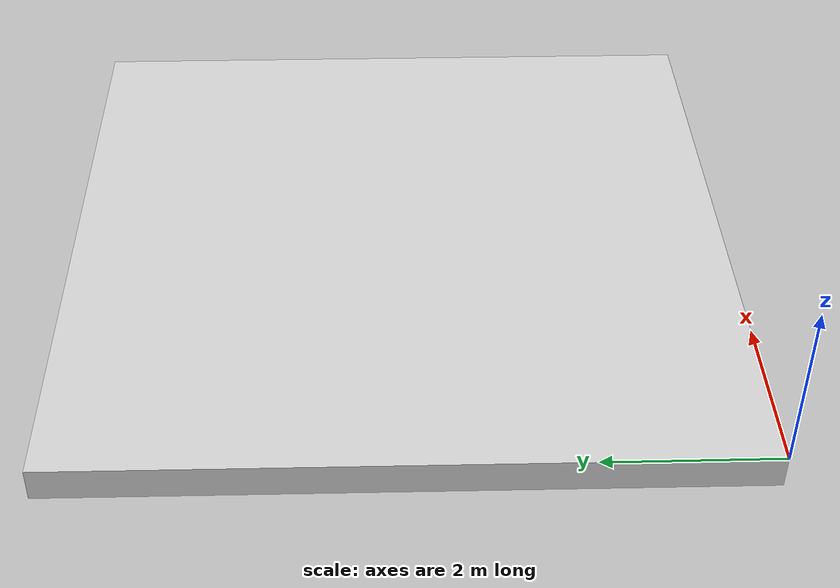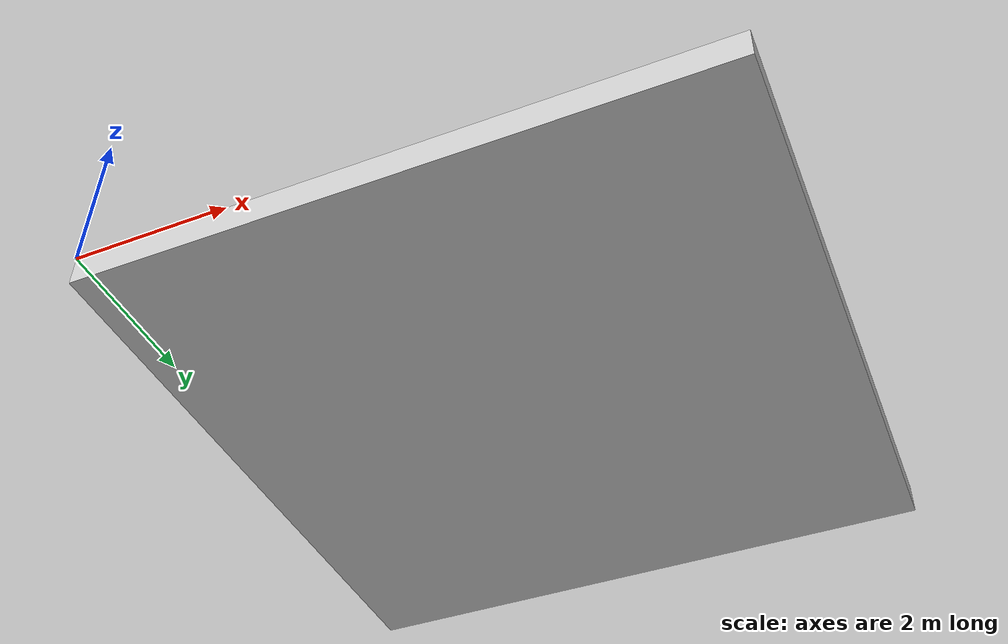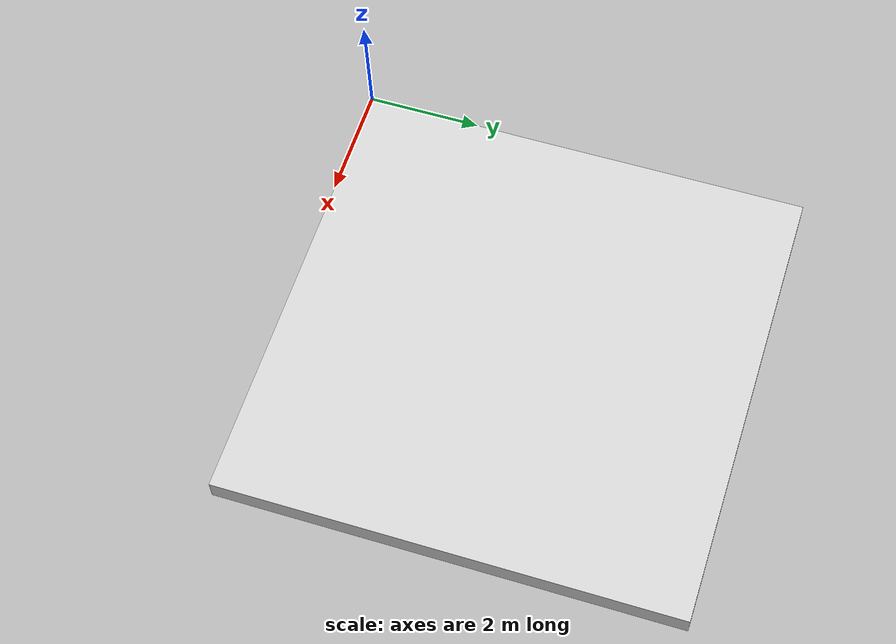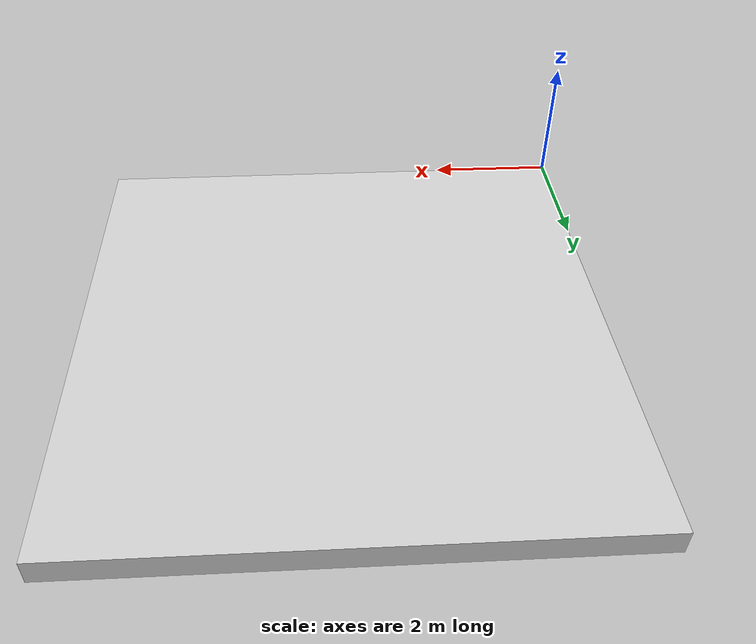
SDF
<?xml version='1.0' encoding='utf-8'?>
<sdf version='1.10'>
<model name='arena_ground'>
  <pose>4 4 -0.2 0 0 0</pose>
  <link name='box_link'>
    <collision name='box_collision'>
      <geometry>
        <box>
          <size>8 8 0.4</size>
        </box>
      </geometry>
      <surface>
        <friction>
          <ode/>
        </friction>
        <bounce/>
        <contact/>
      </surface>
    </collision>
    <visual name='box_visual'>
      <geometry>
        <box>
          <size>8 8 0.4</size>
        </box>
      </geometry>
      <material>
        <ambient>0.8 0.8 0.8 1.0</ambient> <!-- Light grey -->
        <diffuse>0.8 0.8 0.8 1.0</diffuse>
        <specular>0.2 0.2 0.2 1.0</specular>
      </material>
    </visual>
    <pose>0 0 0 0 0 0</pose>
    <enable_wind>false</enable_wind>
  </link>
  <static>false</static>
  <self_collide>false</self_collide>
</model>
</sdf>
